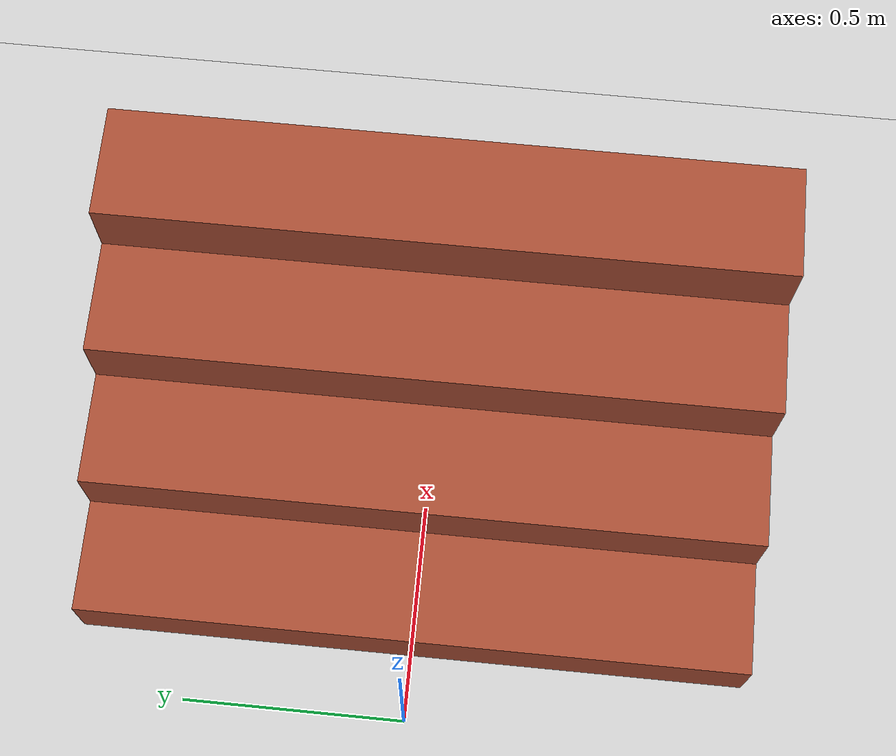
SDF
<sdf version="1.6">
 <world name="default">
  <light name="sun" type="directional">
   <pose>0 0 10 0 -0 0</pose>
   <diffuse>0.8 0.8 0.8 1</diffuse>
   <specular>0.2 0.2 0.2 1</specular>
   <attenuation>
    <range>1000</range>
    <constant>0.9</constant>
    <linear>0.01</linear>
    <quadratic>0.001</quadratic>
   </attenuation>
   <direction>-0.5 0.1 -0.9</direction>
  </light>
  <model name="ground_plane">
   <static>1</static>
   <link name="link">
    <collision name="collision">
     <geometry><plane><normal>0 0 1</normal><size>100 100</size></plane></geometry>
     <surface><friction><ode><mu>100</mu><mu2>50</mu2></ode></friction></surface>
    </collision>
    <visual name="visual">
     <cast_shadows>0</cast_shadows>
     <geometry><plane><normal>0 0 1</normal><size>100 100</size></plane></geometry>
     <material>
      <script><uri>file://media/materials/scripts/gazebo.material</uri><name>Gazebo/Grey</name></script>
     </material>
    </visual>
   </link>
  </model>
  <gravity>0 0 -9.8</gravity>
  <magnetic_field>6e-06 2.3e-05 -4.2e-05</magnetic_field>
  <atmosphere type="adiabatic"/>
  <physics name="default_physics" default="0" type="ode">
   <max_step_size>0.001</max_step_size>
   <real_time_factor>1</real_time_factor>
   <real_time_update_rate>1000</real_time_update_rate>
  </physics>
  <scene><ambient>0.4 0.4 0.4 1</ambient><background>0.7 0.7 0.7 1</background><shadows>0</shadows></scene>
  <spherical_coordinates>
   <surface_model>EARTH_WGS84</surface_model>
   <latitude_deg>0</latitude_deg>
   <longitude_deg>0</longitude_deg>
   <elevation>0</elevation>
   <heading_deg>0</heading_deg>
  </spherical_coordinates>
  <model name="stairs4_x125_d250_h150">
   <pose>0.65 0 0 0 -0 0</pose>
   <link name="Stairs_5">
    <visual name="Stairs_5_Visual_0">
     <pose>-0.375 -0 0.075 0 -0 1.5708</pose>
     <geometry><box><size>1.5 0.25 0.15</size></box></geometry>
     <material>
      <script><uri>file://media/materials/scripts/gazebo.material</uri><name>Gazebo/Bricks</name></script>
      <ambient>1 1 1 1</ambient>
     </material>
     <meta><layer>0</layer></meta>
    </visual>
    <collision name="Stairs_5_Collision_0">
     <geometry><box><size>1.5 0.25 0.15</size></box></geometry>
     <pose>-0.375 -0 0.075 0 -0 1.5708</pose>
    </collision>
    <visual name="Stairs_5_Visual_1">
     <pose>-0.125 -0 0.225 0 -0 1.5708</pose>
     <geometry><box><size>1.5 0.25 0.15</size></box></geometry>
     <material>
      <script><uri>file://media/materials/scripts/gazebo.material</uri><name>Gazebo/Bricks</name></script>
      <ambient>1 1 1 1</ambient>
     </material>
     <meta><layer>0</layer></meta>
    </visual>
    <collision name="Stairs_5_Collision_1">
     <geometry><box><size>1.5 0.25 0.15</size></box></geometry>
     <pose>-0.125 -0 0.225 0 -0 1.5708</pose>
    </collision>
    <visual name="Stairs_5_Visual_2">
     <pose>0.125 0 0.375 0 -0 1.5708</pose>
     <geometry><box><size>1.5 0.25 0.15</size></box></geometry>
     <material>
      <script><uri>file://media/materials/scripts/gazebo.material</uri><name>Gazebo/Bricks</name></script>
      <ambient>1 1 1 1</ambient>
     </material>
     <meta><layer>0</layer></meta>
    </visual>
    <collision name="Stairs_5_Collision_2">
     <geometry><box><size>1.5 0.25 0.15</size></box></geometry>
     <pose>0.125 0 0.375 0 -0 1.5708</pose>
    </collision>
    <visual name="Stairs_5_Visual_3">
     <pose>0.375 0 0.525 0 -0 1.5708</pose>
     <geometry><box><size>1.5 0.25 0.15</size></box></geometry>
     <material>
      <script><uri>file://media/materials/scripts/gazebo.material</uri><name>Gazebo/Bricks</name></script>
      <ambient>1 1 1 1</ambient>
     </material>
     <meta><layer>0</layer></meta>
    </visual>
    <collision name="Stairs_5_Collision_3">
     <geometry><box><size>1.5 0.25 0.15</size></box></geometry>
     <pose>0.375 0 0.525 0 -0 1.5708</pose>
    </collision>
   </link>
   <static>1</static>
  </model>
 </world>
</sdf>
